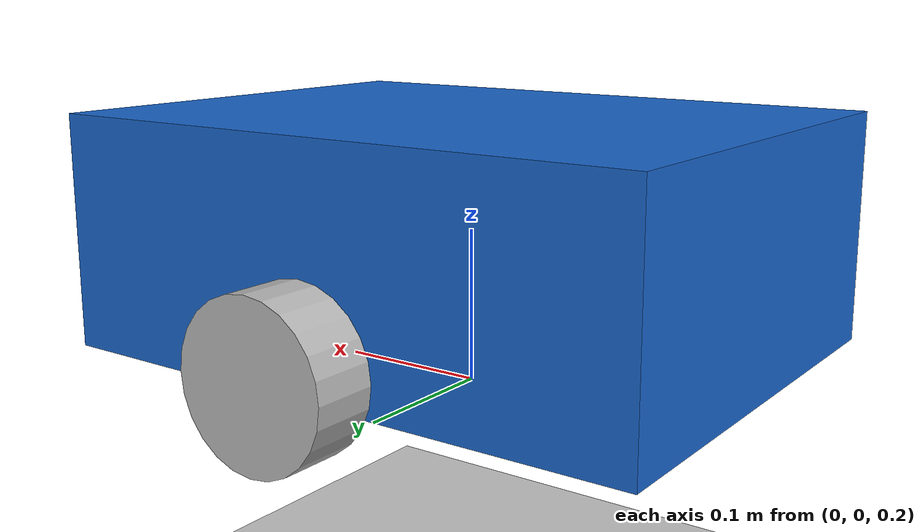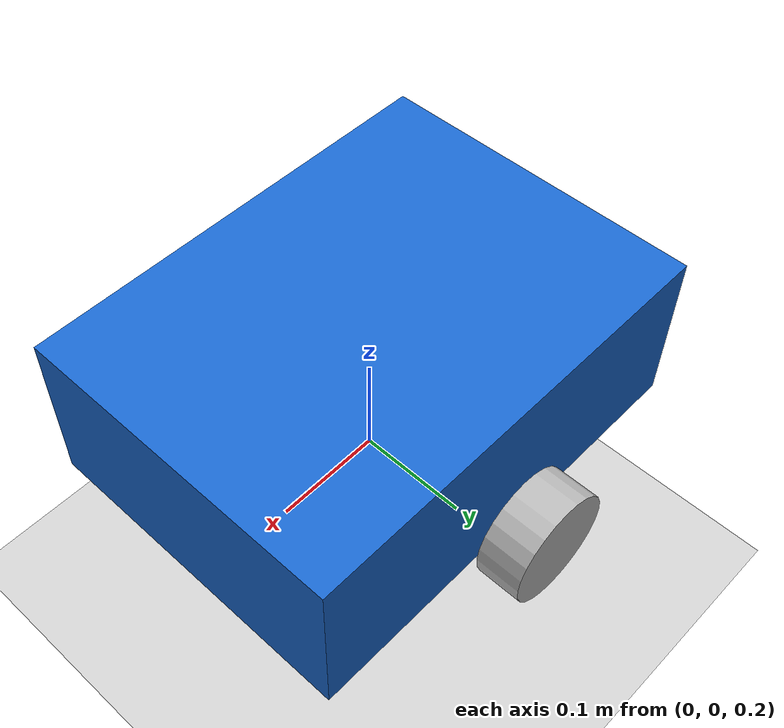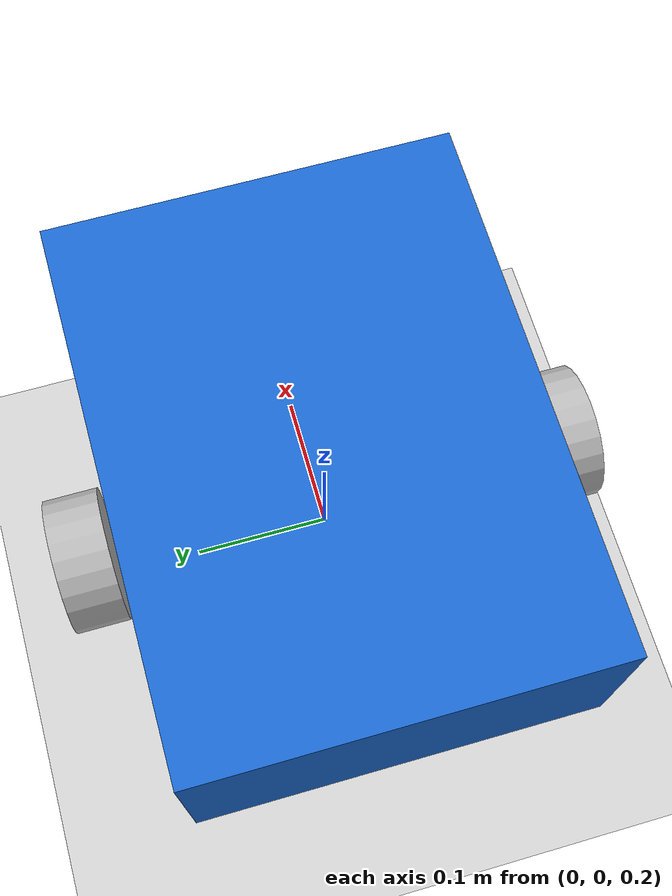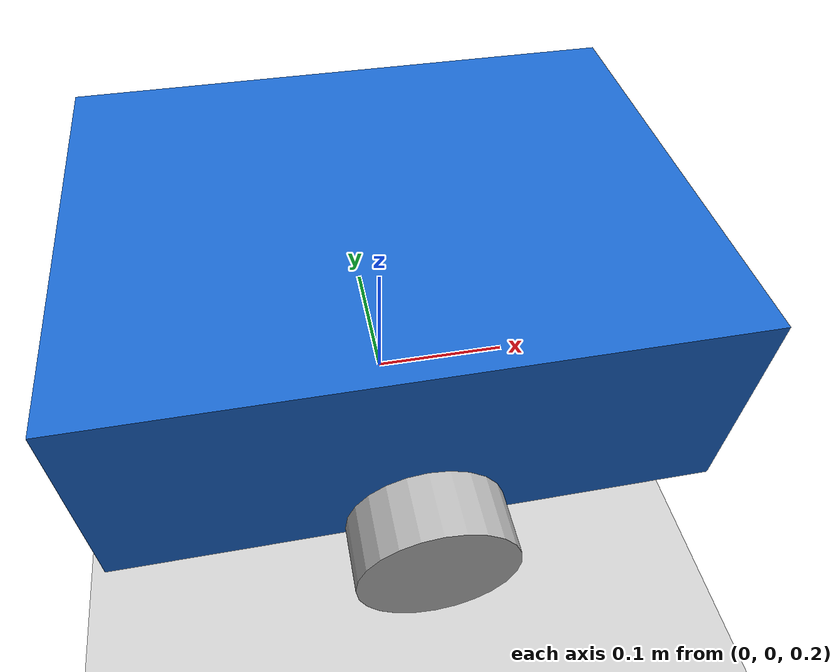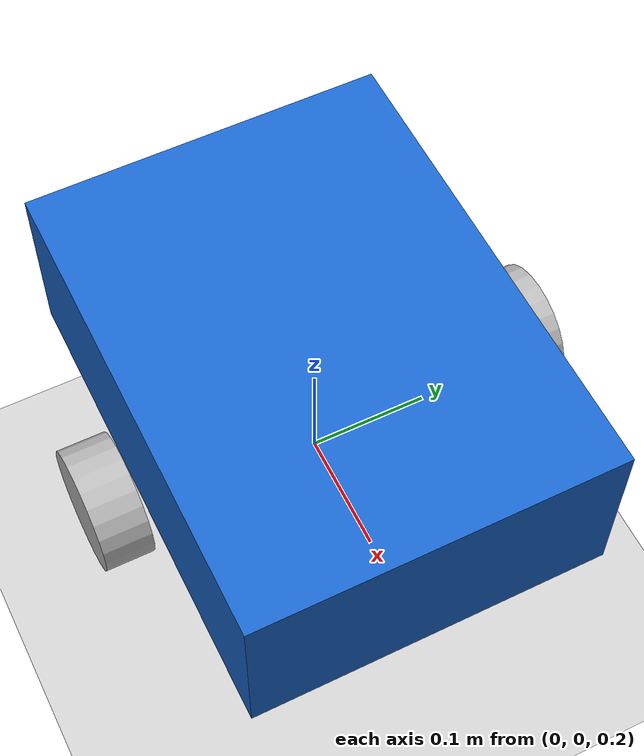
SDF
<?xml version="1.0" ?>
<!-- Lesson 11/12 — 空地 + 一辆差速小车 -->
<sdf version="1.8">
  <world name="simple_robot_world">
    <physics name="1ms" type="ignored">
      <max_step_size>0.001</max_step_size>
      <real_time_factor>1.0</real_time_factor>
    </physics>
    <plugin
      filename="ignition-gazebo-physics-system"
      name="ignition::gazebo::systems::Physics">
    </plugin>
    <plugin
      filename="ignition-gazebo-user-commands-system"
      name="ignition::gazebo::systems::UserCommands">
    </plugin>
    <plugin
      filename="ignition-gazebo-scene-broadcaster-system"
      name="ignition::gazebo::systems::SceneBroadcaster">
    </plugin>

    <light type="directional" name="sun">
      <cast_shadows>true</cast_shadows>
      <pose>0 0 10 0 0 0</pose>
      <diffuse>0.8 0.8 0.8 1</diffuse>
      <specular>0.2 0.2 0.2 1</specular>
      <attenuation>
        <range>1000</range>
        <constant>0.9</constant>
        <linear>0.01</linear>
        <quadratic>0.001</quadratic>
      </attenuation>
      <direction>-0.5 0.1 -0.9</direction>
    </light>

    <model name="ground_plane">
      <static>true</static>
      <link name="link">
        <collision name="collision">
          <geometry><plane><normal>0 0 1</normal></plane></geometry>
        </collision>
        <visual name="visual">
          <geometry><plane><normal>0 0 1</normal><size>100 100</size></plane></geometry>
          <material>
            <ambient>0.8 0.8 0.8 1</ambient>
            <diffuse>0.8 0.8 0.8 1</diffuse>
          </material>
        </visual>
      </link>
    </model>

    <include>
      <uri>model://simple_diff_robot</uri>
      <name>simple_diff_robot</name>
      <pose>0 0 0.2 0 0 0</pose>
    </include>
  </world>
</sdf>

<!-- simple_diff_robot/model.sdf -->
<!-- Lesson 11 — Gazebo Fortress (Ignition Gazebo 6) 差速小车 -->
<sdf version="1.8">
  <model name="simple_diff_robot">
    <pose>0 0 0.15 0 0 0</pose>
    <static>false</static>

    <link name="chassis">
      <pose>0 0 0.1 0 0 0</pose>
      <inertial>
        <mass>5.0</mass>
        <inertia>
          <ixx>0.05</ixx><iyy>0.08</iyy><izz>0.1</izz>
          <ixy>0</ixy><ixz>0</ixz><iyz>0</iyz>
        </inertia>
      </inertial>
      <collision name="collision">
        <geometry><box><size>0.4 0.3 0.15</size></box></geometry>
      </collision>
      <visual name="visual">
        <geometry><box><size>0.4 0.3 0.15</size></box></geometry>
        <material>
          <ambient>0.1 0.4 0.8 1</ambient>
          <diffuse>0.1 0.4 0.8 1</diffuse>
        </material>
      </visual>
    </link>

    <link name="left_wheel">
      <pose>0 0.18 0.05 0 1.5707 1.5707</pose>
      <inertial>
        <mass>0.5</mass>
        <inertia>
          <ixx>0.001</ixx><iyy>0.001</iyy><izz>0.001</izz>
          <ixy>0</ixy><ixz>0</ixz><iyz>0</iyz>
        </inertia>
      </inertial>
      <collision name="collision">
        <geometry><cylinder><radius>0.05</radius><length>0.04</length></cylinder></geometry>
      </collision>
      <visual name="visual">
        <geometry><cylinder><radius>0.05</radius><length>0.04</length></cylinder></geometry>
      </visual>
    </link>

    <link name="right_wheel">
      <pose>0 -0.18 0.05 0 1.5707 1.5707</pose>
      <inertial>
        <mass>0.5</mass>
        <inertia>
          <ixx>0.001</ixx><iyy>0.001</iyy><izz>0.001</izz>
          <ixy>0</ixy><ixz>0</ixz><iyz>0</iyz>
        </inertia>
      </inertial>
      <collision name="collision">
        <geometry><cylinder><radius>0.05</radius><length>0.04</length></cylinder></geometry>
      </collision>
      <visual name="visual">
        <geometry><cylinder><radius>0.05</radius><length>0.04</length></cylinder></geometry>
      </visual>
    </link>

    <joint name="left_wheel_joint" type="revolute">
      <parent>chassis</parent>
      <child>left_wheel</child>
      <axis>
        <xyz>0 1 0</xyz>
        <limit><lower>-1.79769e+308</lower><upper>1.79769e+308</upper></limit>
      </axis>
    </joint>

    <joint name="right_wheel_joint" type="revolute">
      <parent>chassis</parent>
      <child>right_wheel</child>
      <axis>
        <xyz>0 1 0</xyz>
        <limit><lower>-1.79769e+308</lower><upper>1.79769e+308</upper></limit>
      </axis>
    </joint>

    <plugin
      filename="ignition-gazebo-diff-drive-system"
      name="ignition::gazebo::systems::DiffDrive">
      <left_joint>left_wheel_joint</left_joint>
      <right_joint>right_wheel_joint</right_joint>
      <wheel_separation>0.36</wheel_separation>
      <wheel_radius>0.05</wheel_radius>
      <odom_publish_frequency>50</odom_publish_frequency>
      <topic>/model/simple_diff_robot/cmd_vel</topic>
      <odom_topic>/model/simple_diff_robot/odometry</odom_topic>
      <frame_id>odom</frame_id>
      <child_frame_id>chassis</child_frame_id>
    </plugin>
  </model>
</sdf>
